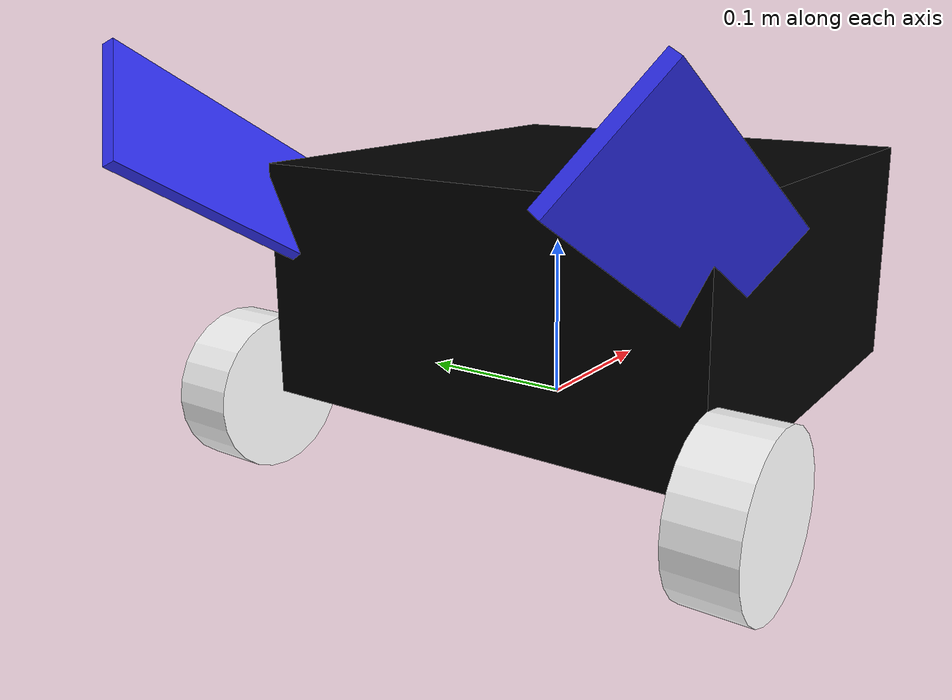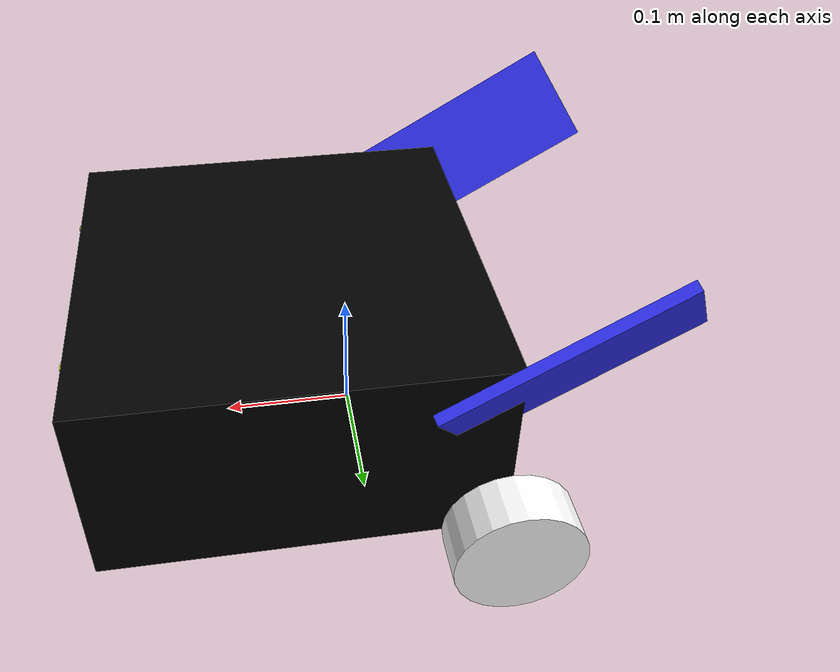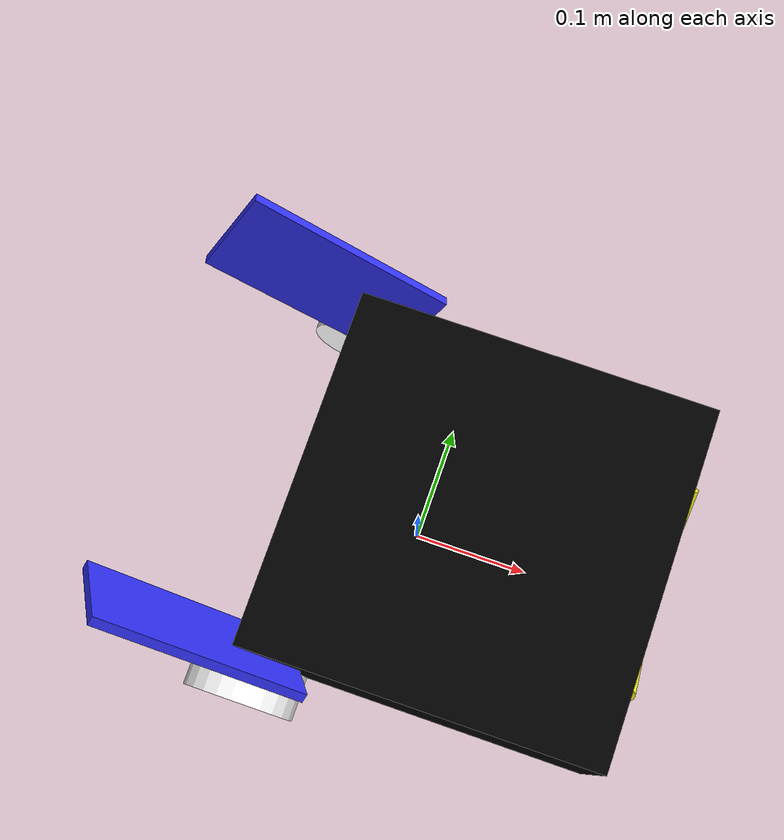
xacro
<?xml version="1.0"?>
<robot xmlns:xacro="http://www.ros.org/wiki/xacro" >

<xacro:include filename = "inertial_macros.xacro" />

    <material name="white">
        <color rgba="1 1 1 1" />
    </material>

    <material name="orange">
        <color rgba="1 0.3 0.1 1"/>
    </material>

    <material name="blue">
        <color rgba="0.2 0.2 1 1"/>
    </material>

    <material name="red">
        <color rgba="1 0 0 1"/>
    </material>

    <material name = "black">
        <color rgba = "0 0 0 1" />
    </material>

    <material name="yellow" >
        <color rgba="1.0 1.0 0.0784313725490196 1.0" />
    </material>

    <!-- BASE LINK -->

    <link name="base_link"></link>

    <link name = "base_footprint"></link>

    <joint name = "base_footprint_joint" type = "fixed">
        <parent link = "base_link" />
        <child link = "base_footprint" />
        <origin xyz = "0 0 0" rpy= "0 0 0" />
    </joint>

    <!-- CHASSIS LINK -->

    <joint name="chassis_joint" type="fixed">
        <parent link="base_link"/>
        <child link="chassis"/>
        <origin xyz="-0.1 0 0"/>
    </joint>

    <link name="chassis">
        <visual>
            <origin xyz="0.15 0 0.075"/>
            <geometry>
                <box size="0.3 0.3 0.15"/>
            </geometry>
            <material name="black"/>
        </visual>

        <collision>
            <origin xyz="0.15 0 0.075"/>
            <geometry>
                <box size="0.3 0.3 0.15"/>
            </geometry>
        </collision>

        <xacro:inertial_box mass = "0.5" x = "0.3" y = "0.3" z = "0.15" >
            <origin xyz = "0 0 0" rpy= "0 0 0" />
        </xacro:inertial_box>

    </link>

    <gazebo reference = "chassis">
        <material>Gazebo/Black</material>
    </gazebo>

    <joint name = "left_wheel_joint" type = "continuous">
        <parent link = "chassis" />
        <child link = "left_wheel" />
        <origin xyz = "0 0.17 0" rpy = "1.57 0 0" />
        <axis xyz = "0 0 -1" />
    </joint>

    <link name = 'left_wheel'>
        <visual>
            <geometry>
                <cylinder radius = "0.05" length = "0.04" />
            </geometry>
            <material name = "white" />
        </visual>

        <collision>
            <geometry>
                <cylinder radius = "0.05" length = "0.04" />
            </geometry>
        </collision>

        <xacro:inertial_cylinder mass = "0.1" radius = "0.05" length = "0.04">
            <origin xyz = "0 0 0" rpy = "0 0 0" />
        </xacro:inertial_cylinder>
    </link>

    <gazebo reference = "left_wheel">
        <material>Gazebo/White</material>
    </gazebo>

    <joint name = "right_wheel_joint" type = "continuous">
        <parent link = "chassis" />
        <child link = "right_wheel" />
        <origin xyz = "0 -0.17 0" rpy = "1.57 0 0" />
        <axis xyz = "0 0 -1" />
    </joint>

    <link name = 'right_wheel'>
        <visual>
            <geometry>
                <cylinder radius = "0.05" length = "0.04" />
            </geometry>
            <material name = "white" />
        </visual>

        <collision>
            <geometry>
                <cylinder radius = "0.05" length = "0.04" />
            </geometry>
        </collision>

        <xacro:inertial_cylinder mass = "0.1" radius = "0.05" length = "0.04">
            <origin xyz = "0 0 0" rpy = "0 0 0" />
        </xacro:inertial_cylinder>
    </link>

    <gazebo reference = "right_wheel">
        <material>Gazebo/White</material>
    </gazebo>

    <joint name = "caster_wheel_joint" type = "fixed">
        <parent link = "chassis" />
        <child link = "caster_wheel" />
        <origin xyz = "0.24 0 0" rpy = "0 0 0" />
    </joint>

    <link name = "caster_wheel">
        <visual>
            <geometry>
                <sphere radius = "0.05" />
            </geometry>
            <material name = "red" />
        </visual>

        <collision>
            <geometry>
                <sphere radius = "0.05" />
            </geometry>
        </collision>

        <xacro:inertial_sphere mass = "0.1" radius = "0.05">
            <origin xyz = "0 0 0" rpy = "0 0 0" />
        </xacro:inertial_sphere>
    </link>

    <gazebo reference = "caster_wheel">
        <material>Gazebo/Red</material>
        <mu1 value = "0.003" />
        <mu2 value = "0.003" />
    </gazebo>

    <joint name="left_hand_joint" type="fixed">
        <parent link="chassis"/>
        <child link="left_hand"/>
        <origin xyz="-0.03 0.15 0.15" rpy = "-${pi/6} ${pi/6} 0"/>
    </joint>

    <link name="left_hand">
        <visual>
            <geometry>
                <box size="0.18 0.008 0.08"/>
            </geometry>
            <material name="blue"/>
        </visual>

        <collision>
            <geometry>
                <box size="0.18 0.008 0.08"/>
            </geometry>
        </collision>

        <xacro:inertial_box mass = "0.1" x= "0.18" y = "0.008" z = "0.08">
            <origin xyz = "0 0 0" rpy = "0 0 0" />
        </xacro:inertial_box>
    </link>

    <gazebo reference = "left_hand">
        <material>Gazebo/Blue</material>
    </gazebo>

    <joint name="right_hand_joint" type="fixed">
        <parent link="chassis"/>
        <child link="right_hand"/>
        <origin xyz="-0.03 -0.15 0.15" rpy = "${pi/6} ${pi/6} 0"/>
    </joint>

    <link name="right_hand">
        <visual>
            <geometry>
                <box size="0.18 0.008 0.08"/>
            </geometry>
            <material name="blue"/>
        </visual>

        <collision>
            <geometry>
                <box size="0.18 0.008 0.08"/>
            </geometry>
        </collision>

        <xacro:inertial_box mass = "0.1" x= "0.18" y = "0.008" z = "0.08">
            <origin xyz = "0 0 0" rpy = "0 0 0" />
        </xacro:inertial_box>
    </link>

    <gazebo reference = "right_hand">
        <material>Gazebo/Blue</material>
    </gazebo>

    <joint name = "left_eye_joint" type = "fixed">
        <parent link = "chassis" />
        <child link = "left_eye" />
        <origin xyz = "0.30 -0.05 0.075" />
    </joint>

    <link name = "left_eye">
        <visual>
            <geometry>
                <sphere radius = "0.01" />
            </geometry>
            <material name = "red" />
        </visual>
    </link>

    <gazebo reference = "left_eye">
        <material>Gazebo/Red</material>
    </gazebo>

    <joint name = "right_eye_joint" type = "fixed">
        <parent link = "chassis" />
        <child link = "right_eye" />
        <origin xyz = "0.30 0.05 0.075" />
    </joint>

    <link name = "right_eye">
        <visual>
            <geometry>
                <sphere radius = "0.01" />
            </geometry>
            <material name = "red" />
        </visual>
    </link>

    <gazebo reference = "right_eye">
        <material>Gazebo/Red</material>
    </gazebo>

    <joint name = "left_eyebrow_joint" type = "fixed">
        <parent link = "chassis" />
        <child link = "left_eyebrow" />
        <origin xyz = "0.295 -0.06 0.12" rpy = "${pi/3} 0 0"/>
    </joint>

    <link name = "left_eyebrow">
        <visual>
            <geometry>
                <cylinder radius = "0.01" length = "0.06" />
            </geometry>
            <material name = "yellow" />
        </visual>
    </link>

    <gazebo reference = "left_eyebrow">
        <material>Gazebo/Yellow</material>
    </gazebo>

    <joint name = "right_eyebrow_joint" type = "fixed">
        <parent link = "chassis" />
        <child link = "right_eyebrow" />
        <origin xyz = "0.295 0.06 0.12" rpy = "-${pi/3} 0 0"/>
    </joint>

    <link name = "right_eyebrow">
        <visual>
            <geometry>
                <cylinder radius = "0.01" length = "0.06" />
            </geometry>
            <material name = "yellow" />
        </visual>
    </link>

    <gazebo reference = "right_eyebrow">
        <material>Gazebo/Yellow</material>
    </gazebo>

</robot>
